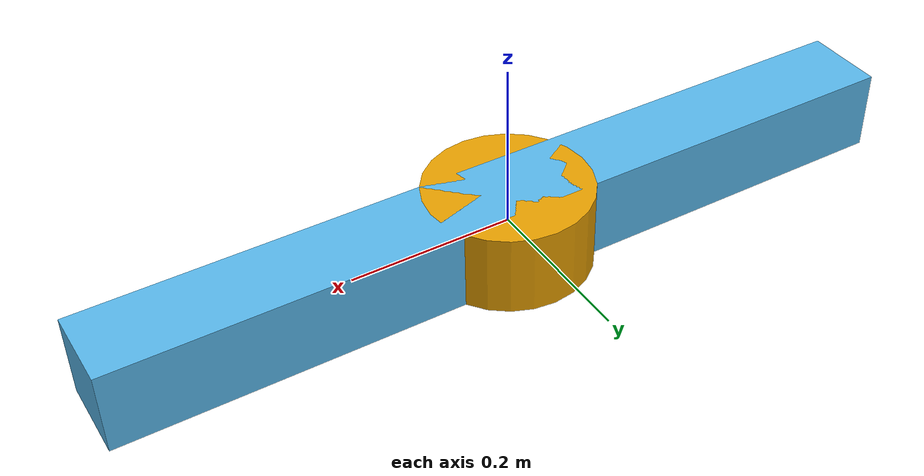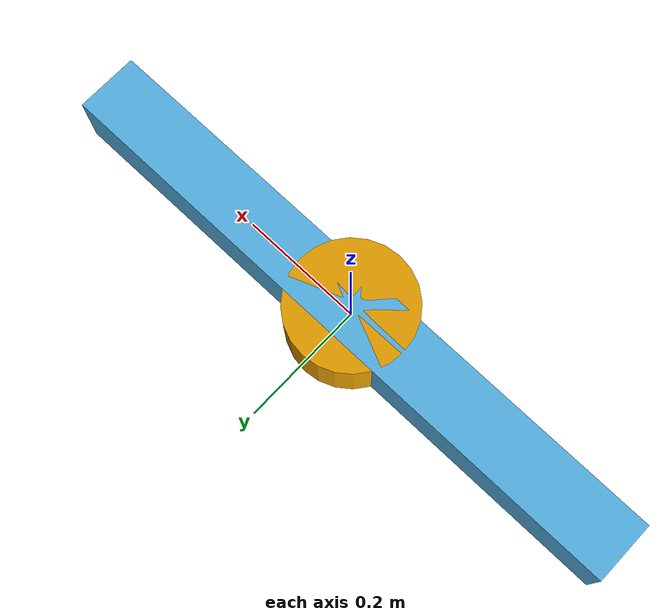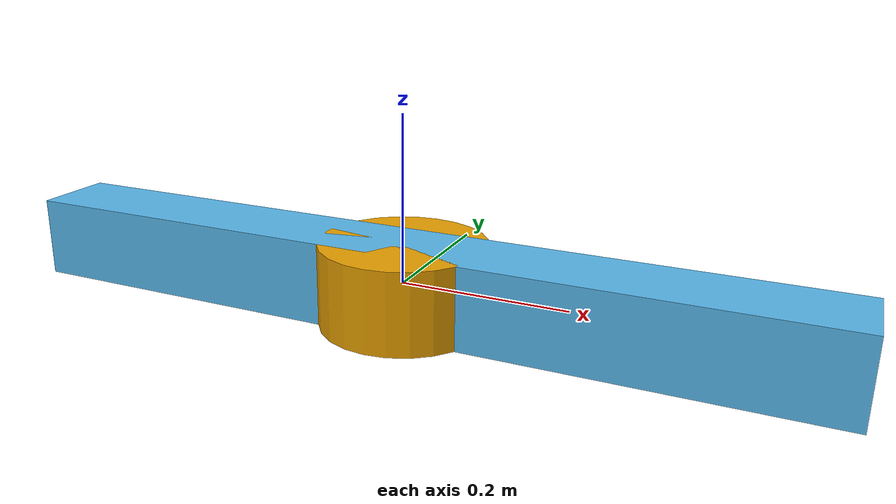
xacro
<?xml version="1.0"?>
<robot name="humanoid" xmlns:xacro="http://www.ros.org/wiki/xacro">
  <material name="red">
    <color rgba="1.0 0.0 0.0 0.0"/>
  </material>

  <link name="base_link">
    <inertial>
      <origin xyz="-8.926448812785309e-14 0.03149216949642246 -9.65125831201785e-18" rpy="0 0 0"/>
      <mass value="3.698757808620283"/>
      <inertia ixx="0.003707" iyy="0.005039" izz="0.003707" ixy="-0.0" iyz="-0.0" ixz="0.0"/>
    </inertial>
    <visual>
      <origin xyz="0 0 0" rpy="0 0 0"/>
      <geometry>
        <cylinder radius="0.1" length="0.1"/>
      </geometry>
    </visual>
    <collision>
      <origin xyz="0 0 0" rpy="0 0 0"/>
      <geometry>
        <box size="0.1 0.1 0.1  "/>
      </geometry>
    </collision>
  </link>

  <link name="joint1_1">
    <inertial>
      <origin xyz="3.552713678800501e-17 -0.010282950806501252 -1.8810077740677782e-08" rpy="0 0 0"/>
      <mass value="0.43346058895064377"/>
      <inertia ixx="0.000521" iyy="0.000125" izz="0.000591" ixy="0.0" iyz="0.0" ixz="-0.0"/>
    </inertial>
    <visual>
      <origin xyz="-0.0 -0.0 -0.0" rpy="0 0 0"/>
      <geometry>
        <box size="1 0.1 0.1  "/>
      </geometry>
    </visual>
    <collision>
      <origin xyz="-0.0 -0.0 -0.0" rpy="0 0 0"/>
      <geometry>
        <box size="0.1 0.1 0.1  "/>
      </geometry>
    </collision>
  </link>

  <joint name="sroll_joint" type="continuous">
    <origin xyz="0.0 0.0 0.0" rpy="0 0 0"/>
    <parent link="base_link"/>
    <child link="joint1_1"/>
    <axis xyz="0.0 1.0 0.0"/>
  </joint>

</robot>
